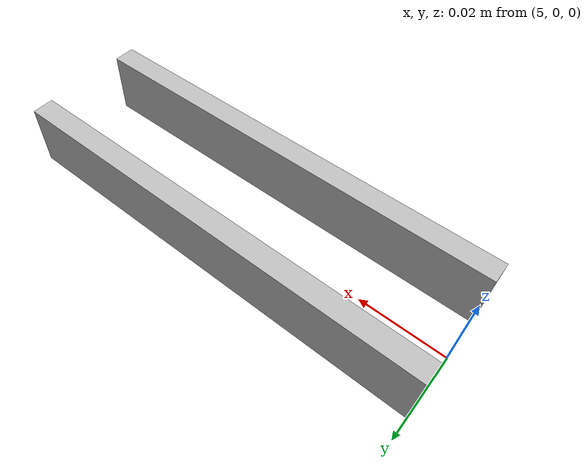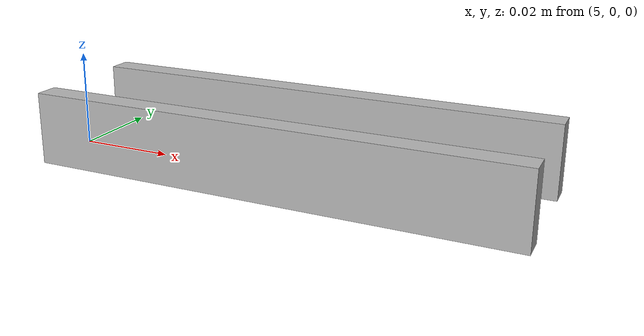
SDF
<?xml version='1.0'?>
<sdf version='1.6'>
    <model name="cityscape">
    <static>true</static>
    <link name="cityscapelink">

    <collision name="collision">
        <pose>5.0 0 0 0 0 0</pose>
        <geometry>
          <mesh>
            <uri>model://side4m_z_up/meshes/side4m_z_up.stl</uri>
            <scale>0.001 0.001 0.001</scale>
          </mesh>
        </geometry>
        <max_contacts>10</max_contacts>
        <surface>
          <bounce/>
          <friction>
            <ode/>
          </friction>
          <contact>
            <ode/>
          </contact>
        </surface>
      </collision>

      <visual name="visual">
        <pose>5.0 0 0 0 0 0</pose>
        <geometry>
          <mesh>
            <uri>model://side4m_z_up/meshes/side4m_z_up.stl</uri>
            <scale>0.001 0.001 0.001</scale>
          </mesh>
        </geometry>

      </visual>

    </link>
    </model>
</sdf>
